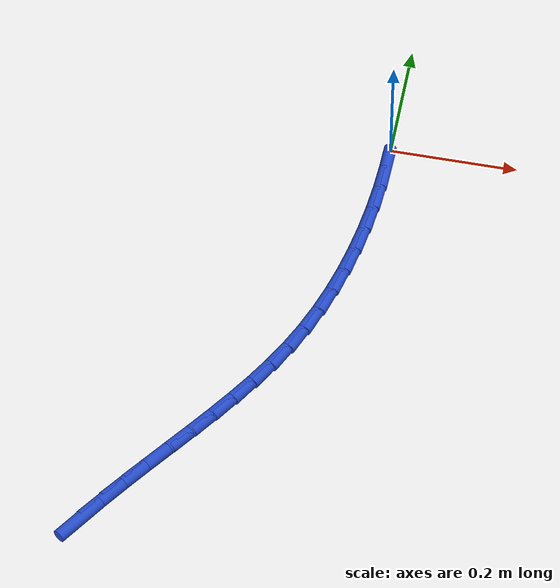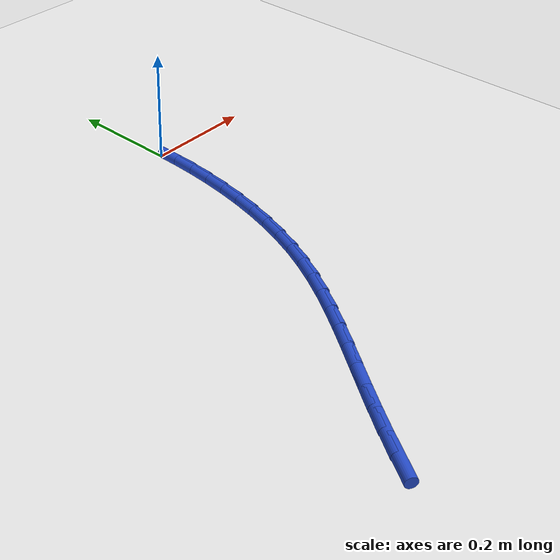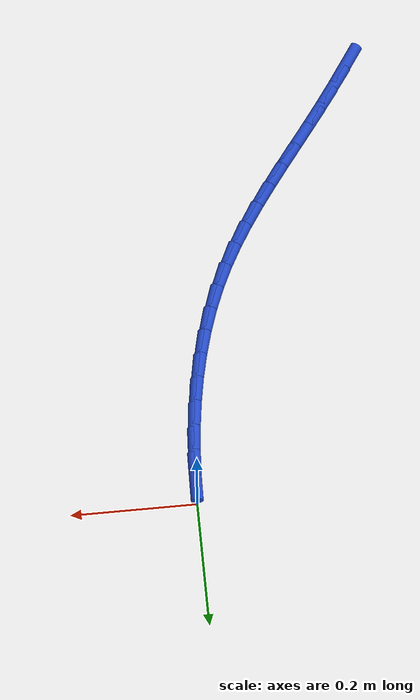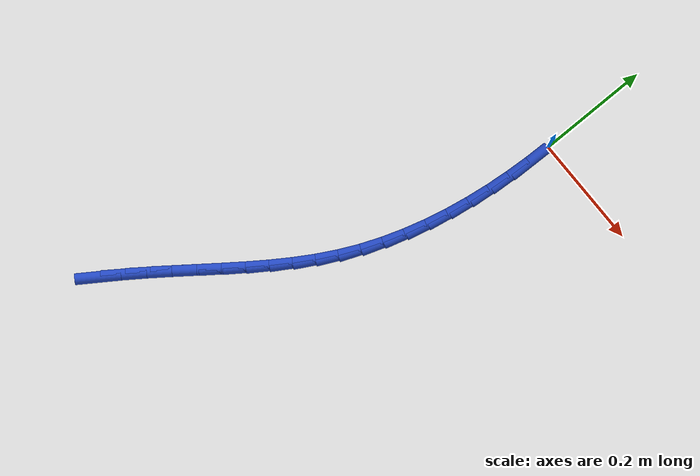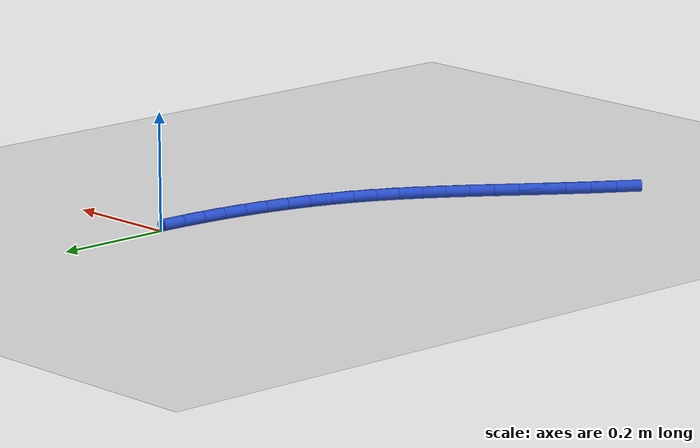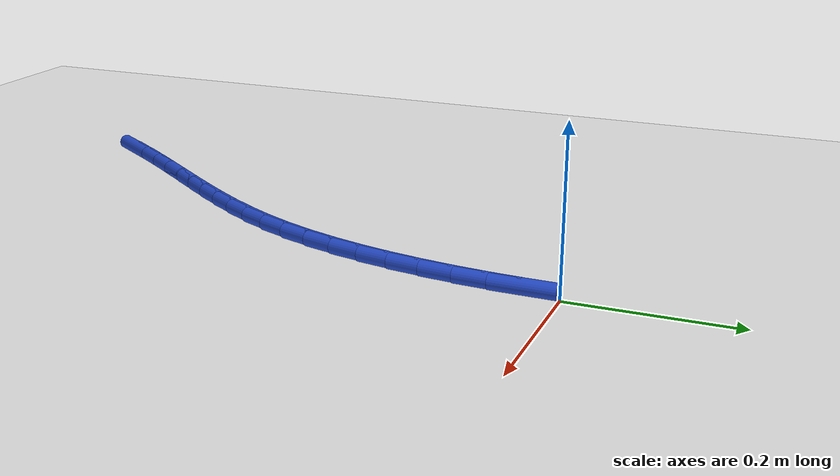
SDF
<sdf version="1.6">
 <world name="default">
  <model name="ground_plane">
   <static>1</static>
   <link name="link">
    <collision name="collision">
     <geometry><plane><normal>0 0 1</normal><size>100 100</size></plane></geometry>
     <surface><friction><ode><mu>100</mu><mu2>50</mu2></ode></friction></surface>
    </collision>
    <visual name="visual">
     <cast_shadows>0</cast_shadows>
     <geometry><plane><normal>0 0 1</normal><size>100 100</size></plane></geometry>
     <material>
      <script><uri>file://media/materials/scripts/gazebo.material</uri><name>Gazebo/WhiteGlow</name></script>
     </material>
    </visual>
   </link>
  </model>
  <model name="line">
   <link name="link_140">
    <pose>-0.3174099467035285 -0.7439441666044765 0.01 0 1.57 0.9835849133230345</pose>
    <collision name="collision">
     <geometry><cylinder><radius>0.01</radius><length>0.08</length></cylinder></geometry>
    </collision>
    <visual name="visual">
     <material>
      <script><name>Gazebo/Blue</name><uri>file://media/materials/scripts/gazebo.material</uri></script>
     </material>
     <geometry><cylinder><radius>0.01</radius><length>0.08</length></cylinder></geometry>
    </visual>
   </link>
   <link name="link_141">
    <pose>-0.29291703805573627 -0.707141748511448 0.01 0 1.57 0.9614346144842539</pose>
    <collision name="collision">
     <geometry><cylinder><radius>0.01</radius><length>0.08</length></cylinder></geometry>
    </collision>
    <visual name="visual">
     <material>
      <script><name>Gazebo/Blue</name><uri>file://media/materials/scripts/gazebo.material</uri></script>
     </material>
     <geometry><cylinder><radius>0.01</radius><length>0.08</length></cylinder></geometry>
    </visual>
   </link>
   <link name="link_142">
    <pose>-0.2680488136093898 -0.671512347734122 0.01 0 1.57 0.9439449876633511</pose>
    <collision name="collision">
     <geometry><cylinder><radius>0.01</radius><length>0.08</length></cylinder></geometry>
    </collision>
    <visual name="visual">
     <material>
      <script><name>Gazebo/Blue</name><uri>file://media/materials/scripts/gazebo.material</uri></script>
     </material>
     <geometry><cylinder><radius>0.01</radius><length>0.08</length></cylinder></geometry>
    </visual>
   </link>
   <link name="link_143">
    <pose>-0.2429924679277145 -0.6369186248922248 0.01 0 1.57 0.934876043902429</pose>
    <collision name="collision">
     <geometry><cylinder><radius>0.01</radius><length>0.08</length></cylinder></geometry>
    </collision>
    <visual name="visual">
     <material>
      <script><name>Gazebo/Blue</name><uri>file://media/materials/scripts/gazebo.material</uri></script>
     </material>
     <geometry><cylinder><radius>0.01</radius><length>0.08</length></cylinder></geometry>
    </visual>
   </link>
   <link name="link_144">
    <pose>-0.21801603936191855 -0.6030853895134534 0.01 0 1.57 0.9346761320030269</pose>
    <collision name="collision">
     <geometry><cylinder><radius>0.01</radius><length>0.08</length></cylinder></geometry>
    </collision>
    <visual name="visual">
     <material>
      <script><name>Gazebo/Blue</name><uri>file://media/materials/scripts/gazebo.material</uri></script>
     </material>
     <geometry><cylinder><radius>0.01</radius><length>0.08</length></cylinder></geometry>
    </visual>
   </link>
   <link name="link_145">
    <pose>-0.19338756626328285 -0.5697374511253818 0.01 0 1.57 0.9437344172831209</pose>
    <collision name="collision">
     <geometry><cylinder><radius>0.01</radius><length>0.08</length></cylinder></geometry>
    </collision>
    <visual name="visual">
     <material>
      <script><name>Gazebo/Blue</name><uri>file://media/materials/scripts/gazebo.material</uri></script>
     </material>
     <geometry><cylinder><radius>0.01</radius><length>0.08</length></cylinder></geometry>
    </visual>
   </link>
   <link name="link_146">
    <pose>-0.16937508698308762 -0.5365996192555836 0.01 0 1.57 0.9623701652065947</pose>
    <collision name="collision">
     <geometry><cylinder><radius>0.01</radius><length>0.08</length></cylinder></geometry>
    </collision>
    <visual name="visual">
     <material>
      <script><name>Gazebo/Blue</name><uri>file://media/materials/scripts/gazebo.material</uri></script>
     </material>
     <geometry><cylinder><radius>0.01</radius><length>0.08</length></cylinder></geometry>
    </visual>
   </link>
   <link name="link_147">
    <pose>-0.14624663987261452 -0.503396703431634 0.01 0 1.57 0.9907976478546671</pose>
    <collision name="collision">
     <geometry><cylinder><radius>0.01</radius><length>0.08</length></cylinder></geometry>
    </collision>
    <visual name="visual">
     <material>
      <script><name>Gazebo/Blue</name><uri>file://media/materials/scripts/gazebo.material</uri></script>
     </material>
     <geometry><cylinder><radius>0.01</radius><length>0.08</length></cylinder></geometry>
    </visual>
   </link>
   <link name="link_148">
    <pose>-0.12427026328314386 -0.4698535131811063 0.01 0 1.57 1.0290631801733412</pose>
    <collision name="collision">
     <geometry><cylinder><radius>0.01</radius><length>0.08</length></cylinder></geometry>
    </collision>
    <visual name="visual">
     <material>
      <script><name>Gazebo/Blue</name><uri>file://media/materials/scripts/gazebo.material</uri></script>
     </material>
     <geometry><cylinder><radius>0.01</radius><length>0.08</length></cylinder></geometry>
    </visual>
   </link>
   <link name="link_149">
    <pose>-0.10371399556595635 -0.43569485803157465 0.01 0 1.57 1.0769563793760486</pose>
    <collision name="collision">
     <geometry><cylinder><radius>0.01</radius><length>0.08</length></cylinder></geometry>
    </collision>
    <visual name="visual">
     <material>
      <script><name>Gazebo/Blue</name><uri>file://media/materials/scripts/gazebo.material</uri></script>
     </material>
     <geometry><cylinder><radius>0.01</radius><length>0.08</length></cylinder></geometry>
    </visual>
   </link>
   <link name="link_150">
    <pose>-0.08484587507233288 -0.4006455475106132 0.01 0 1.57 1.1336582270677993</pose>
    <collision name="collision">
     <geometry><cylinder><radius>0.01</radius><length>0.08</length></cylinder></geometry>
    </collision>
    <visual name="visual">
     <material>
      <script><name>Gazebo/Blue</name><uri>file://media/materials/scripts/gazebo.material</uri></script>
     </material>
     <geometry><cylinder><radius>0.01</radius><length>0.08</length></cylinder></geometry>
    </visual>
   </link>
   <link name="link_151">
    <pose>-0.06792696395679389 -0.3644390240099021 0.01 0 1.57 1.1926657192954098</pose>
    <collision name="collision">
     <geometry><cylinder><radius>0.01</radius><length>0.08</length></cylinder></geometry>
    </collision>
    <visual name="visual">
     <material>
      <script><name>Gazebo/Blue</name><uri>file://media/materials/scripts/gazebo.material</uri></script>
     </material>
     <geometry><cylinder><radius>0.01</radius><length>0.08</length></cylinder></geometry>
    </visual>
   </link>
   <link name="link_152">
    <pose>-0.05305750776110453 -0.32700773634422686 0.01 0 1.57 1.2481273206016865</pose>
    <collision name="collision">
     <geometry><cylinder><radius>0.01</radius><length>0.08</length></cylinder></geometry>
    </collision>
    <visual name="visual">
     <material>
      <script><name>Gazebo/Blue</name><uri>file://media/materials/scripts/gazebo.material</uri></script>
     </material>
     <geometry><cylinder><radius>0.01</radius><length>0.08</length></cylinder></geometry>
    </visual>
   </link>
   <link name="link_153">
    <pose>-0.040176732883120396 -0.2884833903785674 0.01 0 1.57 1.299989494067884</pose>
    <collision name="collision">
     <geometry><cylinder><radius>0.01</radius><length>0.08</length></cylinder></geometry>
    </collision>
    <visual name="visual">
     <material>
      <script><name>Gazebo/Blue</name><uri>file://media/materials/scripts/gazebo.material</uri></script>
     </material>
     <geometry><cylinder><radius>0.01</radius><length>0.08</length></cylinder></geometry>
    </visual>
   </link>
   <link name="link_154">
    <pose>-0.02921684901768702 -0.2490063749674549 0.01 0 1.57 1.3484971608698653</pose>
    <collision name="collision">
     <geometry><cylinder><radius>0.01</radius><length>0.08</length></cylinder></geometry>
    </collision>
    <visual name="visual">
     <material>
      <script><name>Gazebo/Blue</name><uri>file://media/materials/scripts/gazebo.material</uri></script>
     </material>
     <geometry><cylinder><radius>0.01</radius><length>0.08</length></cylinder></geometry>
    </visual>
   </link>
   <link name="link_155">
    <pose>-0.02011006585964988 -0.2087170789654203 0.01 0 1.57 1.3939224558827064</pose>
    <collision name="collision">
     <geometry><cylinder><radius>0.01</radius><length>0.08</length></cylinder></geometry>
    </collision>
    <visual name="visual">
     <material>
      <script><name>Gazebo/Blue</name><uri>file://media/materials/scripts/gazebo.material</uri></script>
     </material>
     <geometry><cylinder><radius>0.01</radius><length>0.08</length></cylinder></geometry>
    </visual>
   </link>
   <link name="link_156">
    <pose>-0.012788593103854341 -0.16775589122699383 0.01 0 1.57 1.436549859913268</pose>
    <collision name="collision">
     <geometry><cylinder><radius>0.01</radius><length>0.08</length></cylinder></geometry>
    </collision>
    <visual name="visual">
     <material>
      <script><name>Gazebo/Blue</name><uri>file://media/materials/scripts/gazebo.material</uri></script>
     </material>
     <geometry><cylinder><radius>0.01</radius><length>0.08</length></cylinder></geometry>
    </visual>
   </link>
   <link name="link_157">
    <pose>-0.007184640445146185 -0.12626320060670804 0.01 0 1.57 1.4766659781202784</pose>
    <collision name="collision">
     <geometry><cylinder><radius>0.01</radius><length>0.08</length></cylinder></geometry>
    </collision>
    <visual name="visual">
     <material>
      <script><name>Gazebo/Blue</name><uri>file://media/materials/scripts/gazebo.material</uri></script>
     </material>
     <geometry><cylinder><radius>0.01</radius><length>0.08</length></cylinder></geometry>
    </visual>
   </link>
   <link name="link_158">
    <pose>-0.0032304175783707412 -0.08437939595909313 0.01 0 1.57 1.5145531113533366</pose>
    <collision name="collision">
     <geometry><cylinder><radius>0.01</radius><length>0.08</length></cylinder></geometry>
    </collision>
    <visual name="visual">
     <material>
      <script><name>Gazebo/Blue</name><uri>file://media/materials/scripts/gazebo.material</uri></script>
     </material>
     <geometry><cylinder><radius>0.01</radius><length>0.08</length></cylinder></geometry>
    </visual>
   </link>
   <link name="link_159">
    <pose>-0.0008581341983735112 -0.0422448661386801 0.01 0 1.57 1.5504857831738466</pose>
    <collision name="collision">
     <geometry><cylinder><radius>0.01</radius><length>0.08</length></cylinder></geometry>
    </collision>
    <visual name="visual">
     <material>
      <script><name>Gazebo/Blue</name><uri>file://media/materials/scripts/gazebo.material</uri></script>
     </material>
     <geometry><cylinder><radius>0.01</radius><length>0.08</length></cylinder></geometry>
    </visual>
   </link>
  </model>
 </world>
</sdf>
